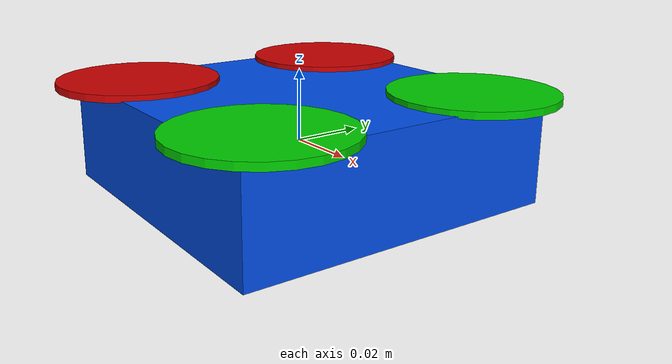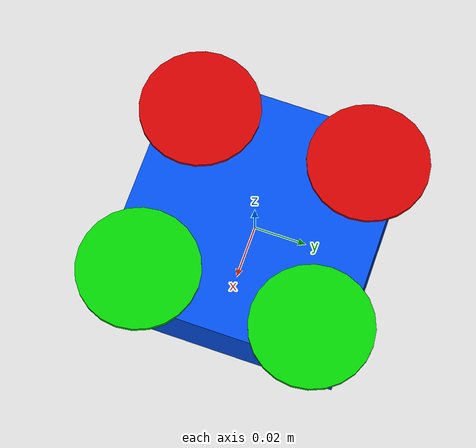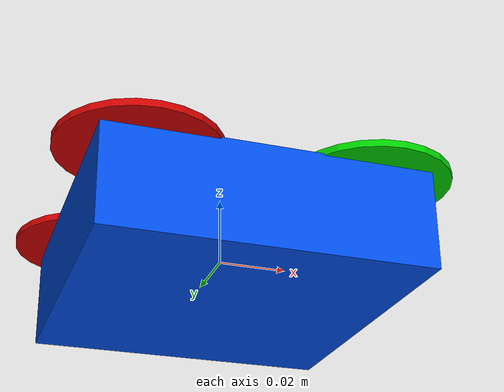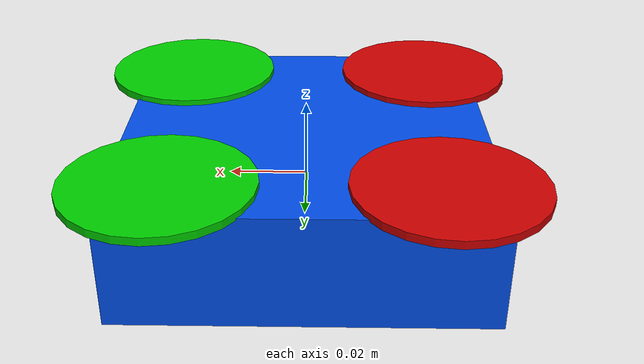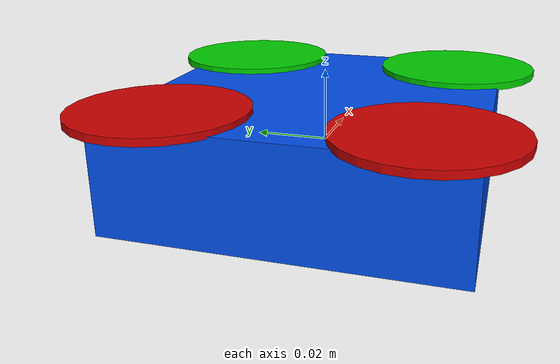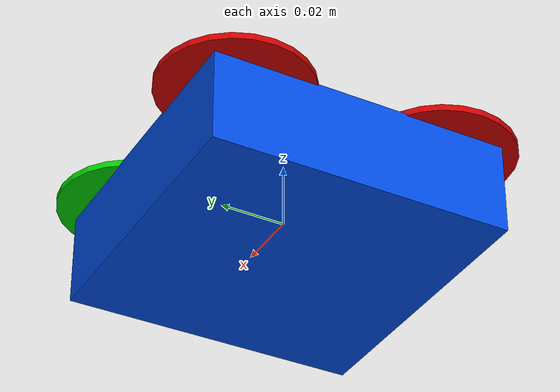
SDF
<?xml version="1.0" ?>
<sdf version="1.9">
  <model name="crazyflie_sim_blue">
    <pose>0 0 0 0 0 0</pose>
    <!-- static=false so set_pose can move it; no physics plugins needed -->

    <link name="base_link">
      <inertial>
        <mass>0.027</mass>
        <inertia>
          <ixx>1.657e-5</ixx><iyy>1.657e-5</iyy><izz>2.9e-5</izz>
          <ixy>0</ixy><ixz>0</ixz><iyz>0</iyz>
        </inertia>
      </inertial>

      <!-- Body -->
      <visual name="body_visual">
        <geometry><box><size>0.092 0.092 0.029</size></box></geometry>
        <material>
          <ambient>0.0 0.3 0.9 1</ambient>
          <diffuse>0.0 0.3 0.9 1</diffuse>
        </material>
      </visual>

      <!-- Front propellers (green) -->
      <visual name="prop_fl">
        <pose>0.033 0.033 0.015 0 0 0</pose>
        <geometry><cylinder><radius>0.023</radius><length>0.002</length></cylinder></geometry>
        <material><ambient>0 0.8 0 1</ambient><diffuse>0 0.8 0 1</diffuse></material>
      </visual>
      <visual name="prop_fr">
        <pose>0.033 -0.033 0.015 0 0 0</pose>
        <geometry><cylinder><radius>0.023</radius><length>0.002</length></cylinder></geometry>
        <material><ambient>0 0.8 0 1</ambient><diffuse>0 0.8 0 1</diffuse></material>
      </visual>
      <!-- Rear propellers (red) -->
      <visual name="prop_rl">
        <pose>-0.033 0.033 0.015 0 0 0</pose>
        <geometry><cylinder><radius>0.023</radius><length>0.002</length></cylinder></geometry>
        <material><ambient>0.8 0 0 1</ambient><diffuse>0.8 0 0 1</diffuse></material>
      </visual>
      <visual name="prop_rr">
        <pose>-0.033 -0.033 0.015 0 0 0</pose>
        <geometry><cylinder><radius>0.023</radius><length>0.002</length></cylinder></geometry>
        <material><ambient>0.8 0 0 1</ambient><diffuse>0.8 0 0 1</diffuse></material>
      </visual>
    </link>
  </model>
</sdf>
